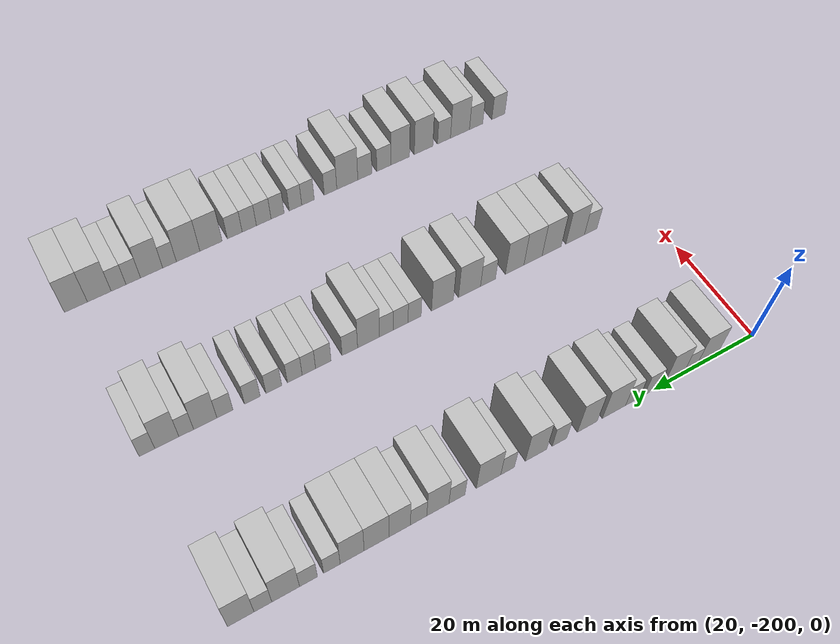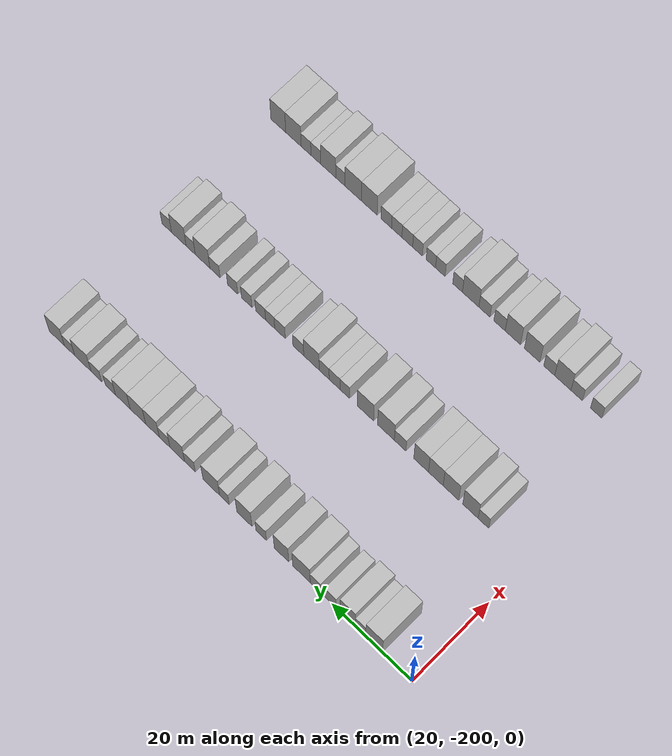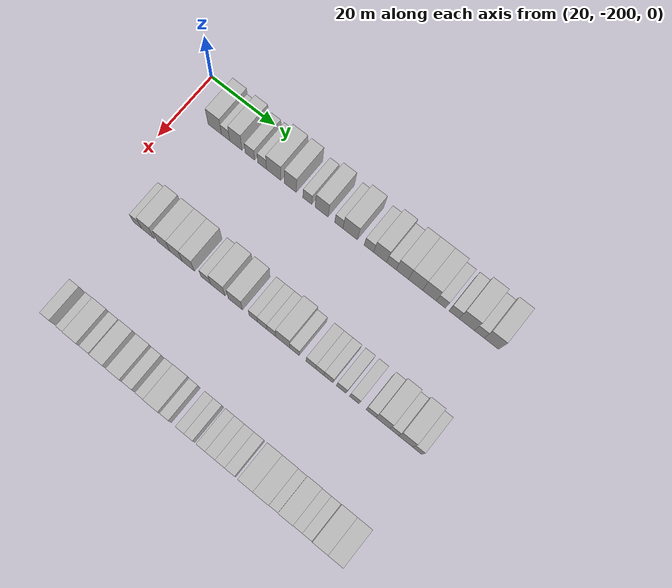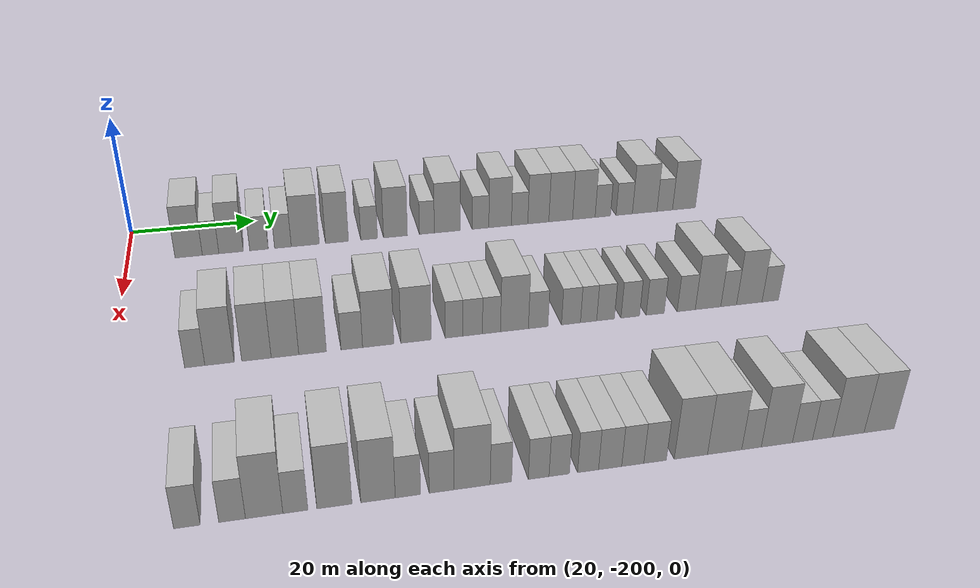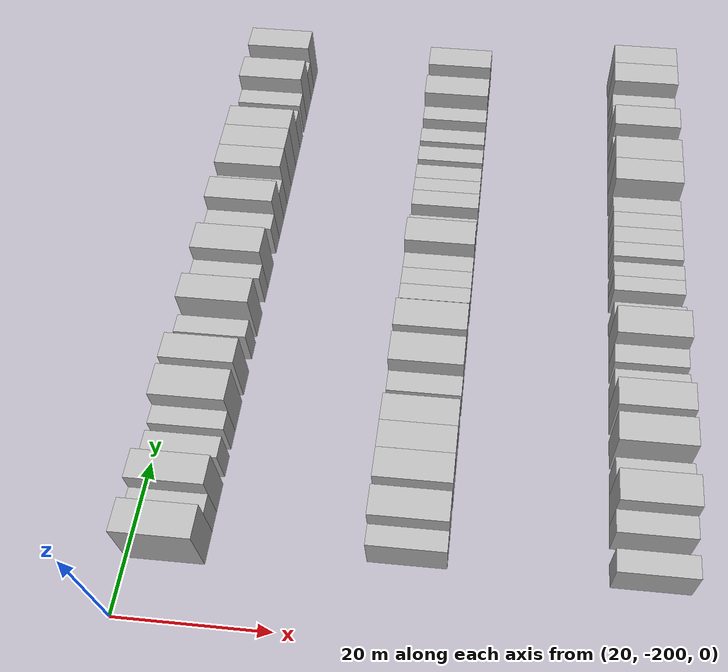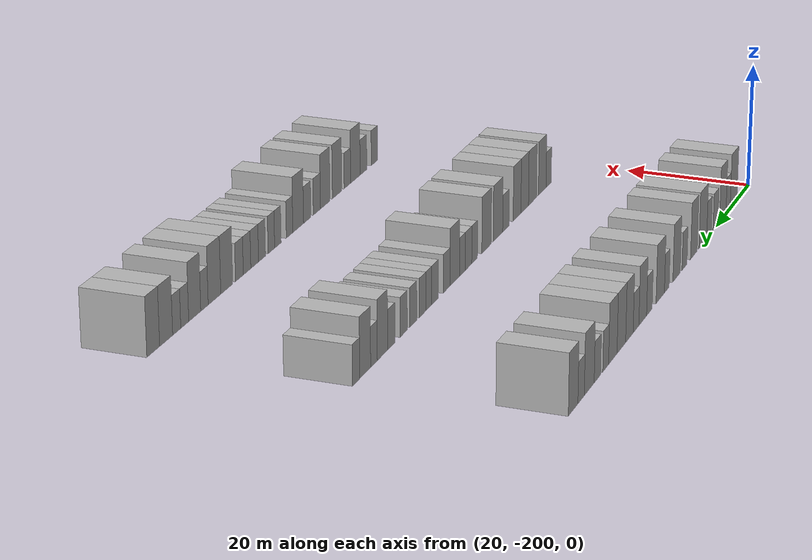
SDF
<sdf version="1.6">
 <world name="default">
  <model name="building_24">
   <static>1</static>
   <pose>25.0000 -190.5436 0 0.000000 0.000000 0.000000</pose>
   <link name="link">
    <pose>0 0 4.50 0 0 0</pose>
    <collision name="collision"><geometry><box><size>10.0000 4.2340 9.0000</size></box></geometry></collision>
    <visual name="visual">
     <cast_shadows>0</cast_shadows>
     <geometry><box><size>10.0000 4.2340 9.0000</size></box></geometry>
     <material>
      <script>
       <uri>model://HANNAS_wall/materials/scripts</uri>
       <uri>model://HANNAS_wall/materials/textures</uri>
       <name>vrc/HANNAS_wall</name>
      </script>
     </material>
    </visual>
   </link>
  </model>
  <model name="building_25">
   <static>1</static>
   <pose>25.0000 -187.1409 0 0.000000 0.000000 0.000000</pose>
   <link name="link">
    <pose>0 0 3.00 0 0 0</pose>
    <collision name="collision"><geometry><box><size>10.0000 2.5713 6.0000</size></box></geometry></collision>
    <visual name="visual">
     <cast_shadows>0</cast_shadows>
     <geometry><box><size>10.0000 2.5713 6.0000</size></box></geometry>
     <material>
      <script>
       <uri>model://HANNAS_wall/materials/scripts</uri>
       <uri>model://HANNAS_wall/materials/textures</uri>
       <name>vrc/HANNAS_wall</name>
      </script>
     </material>
    </visual>
   </link>
  </model>
  <model name="building_26">
   <static>1</static>
   <pose>25.0000 -183.9391 0 0.000000 0.000000 0.000000</pose>
   <link name="link">
    <pose>0 0 4.50 0 0 0</pose>
    <collision name="collision"><geometry><box><size>10.0000 3.8322 9.0000</size></box></geometry></collision>
    <visual name="visual">
     <cast_shadows>0</cast_shadows>
     <geometry><box><size>10.0000 3.8322 9.0000</size></box></geometry>
     <material>
      <script>
       <uri>model://HANNAS_wall/materials/scripts</uri>
       <uri>model://HANNAS_wall/materials/textures</uri>
       <name>vrc/HANNAS_wall</name>
      </script>
     </material>
    </visual>
   </link>
  </model>
  <model name="building_27">
   <static>1</static>
   <pose>25.0000 -179.5580 0 0.000000 0.000000 0.000000</pose>
   <link name="link">
    <pose>0 0 3.00 0 0 0</pose>
    <collision name="collision"><geometry><box><size>10.0000 2.9300 6.0000</size></box></geometry></collision>
    <visual name="visual">
     <cast_shadows>0</cast_shadows>
     <geometry><box><size>10.0000 2.9300 6.0000</size></box></geometry>
     <material>
      <script>
       <uri>model://HANNAS_wall/materials/scripts</uri>
       <uri>model://HANNAS_wall/materials/textures</uri>
       <name>vrc/HANNAS_wall</name>
      </script>
     </material>
    </visual>
   </link>
  </model>
  <model name="building_28">
   <static>1</static>
   <pose>25.0000 -175.7674 0 0.000000 0.000000 0.000000</pose>
   <link name="link">
    <pose>0 0 3.00 0 0 0</pose>
    <collision name="collision"><geometry><box><size>10.0000 2.6513 6.0000</size></box></geometry></collision>
    <visual name="visual">
     <cast_shadows>0</cast_shadows>
     <geometry><box><size>10.0000 2.6513 6.0000</size></box></geometry>
     <material>
      <script>
       <uri>model://HANNAS_wall/materials/scripts</uri>
       <uri>model://HANNAS_wall/materials/textures</uri>
       <name>vrc/HANNAS_wall</name>
      </script>
     </material>
    </visual>
   </link>
  </model>
  <model name="building_29">
   <static>1</static>
   <pose>25.0000 -172.1973 0 0.000000 0.000000 0.000000</pose>
   <link name="link">
    <pose>0 0 4.50 0 0 0</pose>
    <collision name="collision"><geometry><box><size>10.0000 4.4889 9.0000</size></box></geometry></collision>
    <visual name="visual">
     <cast_shadows>0</cast_shadows>
     <geometry><box><size>10.0000 4.4889 9.0000</size></box></geometry>
     <material>
      <script>
       <uri>model://HANNAS_wall/materials/scripts</uri>
       <uri>model://HANNAS_wall/materials/textures</uri>
       <name>vrc/HANNAS_wall</name>
      </script>
     </material>
    </visual>
   </link>
  </model>
  <model name="building_30">
   <static>1</static>
   <pose>25.0000 -167.0907 0 0.000000 0.000000 0.000000</pose>
   <link name="link">
    <pose>0 0 4.50 0 0 0</pose>
    <collision name="collision"><geometry><box><size>10.0000 3.7242 9.0000</size></box></geometry></collision>
    <visual name="visual">
     <cast_shadows>0</cast_shadows>
     <geometry><box><size>10.0000 3.7242 9.0000</size></box></geometry>
     <material>
      <script>
       <uri>model://HANNAS_wall/materials/scripts</uri>
       <uri>model://HANNAS_wall/materials/textures</uri>
       <name>vrc/HANNAS_wall</name>
      </script>
     </material>
    </visual>
   </link>
  </model>
  <model name="building_31">
   <static>1</static>
   <pose>25.0000 -161.8653 0 0.000000 0.000000 0.000000</pose>
   <link name="link">
    <pose>0 0 3.00 0 0 0</pose>
    <collision name="collision"><geometry><box><size>10.0000 2.7267 6.0000</size></box></geometry></collision>
    <visual name="visual">
     <cast_shadows>0</cast_shadows>
     <geometry><box><size>10.0000 2.7267 6.0000</size></box></geometry>
     <material>
      <script>
       <uri>model://HANNAS_wall/materials/scripts</uri>
       <uri>model://HANNAS_wall/materials/textures</uri>
       <name>vrc/HANNAS_wall</name>
      </script>
     </material>
    </visual>
   </link>
  </model>
  <model name="building_32">
   <static>1</static>
   <pose>25.0000 -157.5328 0 0.000000 0.000000 0.000000</pose>
   <link name="link">
    <pose>0 0 4.50 0 0 0</pose>
    <collision name="collision"><geometry><box><size>10.0000 3.9383 9.0000</size></box></geometry></collision>
    <visual name="visual">
     <cast_shadows>0</cast_shadows>
     <geometry><box><size>10.0000 3.9383 9.0000</size></box></geometry>
     <material>
      <script>
       <uri>model://HANNAS_wall/materials/scripts</uri>
       <uri>model://HANNAS_wall/materials/textures</uri>
       <name>vrc/HANNAS_wall</name>
      </script>
     </material>
    </visual>
   </link>
  </model>
  <model name="building_33">
   <static>1</static>
   <pose>25.0000 -152.3261 0 0.000000 0.000000 0.000000</pose>
   <link name="link">
    <pose>0 0 3.00 0 0 0</pose>
    <collision name="collision"><geometry><box><size>10.0000 2.4749 6.0000</size></box></geometry></collision>
    <visual name="visual">
     <cast_shadows>0</cast_shadows>
     <geometry><box><size>10.0000 2.4749 6.0000</size></box></geometry>
     <material>
      <script>
       <uri>model://HANNAS_wall/materials/scripts</uri>
       <uri>model://HANNAS_wall/materials/textures</uri>
       <name>vrc/HANNAS_wall</name>
      </script>
     </material>
    </visual>
   </link>
  </model>
  <model name="building_34">
   <static>1</static>
   <pose>25.0000 -148.9063 0 0.000000 0.000000 0.000000</pose>
   <link name="link">
    <pose>0 0 4.50 0 0 0</pose>
    <collision name="collision"><geometry><box><size>10.0000 4.3647 9.0000</size></box></geometry></collision>
    <visual name="visual">
     <cast_shadows>0</cast_shadows>
     <geometry><box><size>10.0000 4.3647 9.0000</size></box></geometry>
     <material>
      <script>
       <uri>model://HANNAS_wall/materials/scripts</uri>
       <uri>model://HANNAS_wall/materials/textures</uri>
       <name>vrc/HANNAS_wall</name>
      </script>
     </material>
    </visual>
   </link>
  </model>
  <model name="building_35">
   <static>1</static>
   <pose>25.0000 -143.3129 0 0.000000 0.000000 0.000000</pose>
   <link name="link">
    <pose>0 0 3.00 0 0 0</pose>
    <collision name="collision"><geometry><box><size>10.0000 2.8221 6.0000</size></box></geometry></collision>
    <visual name="visual">
     <cast_shadows>0</cast_shadows>
     <geometry><box><size>10.0000 2.8221 6.0000</size></box></geometry>
     <material>
      <script>
       <uri>model://HANNAS_wall/materials/scripts</uri>
       <uri>model://HANNAS_wall/materials/textures</uri>
       <name>vrc/HANNAS_wall</name>
      </script>
     </material>
    </visual>
   </link>
  </model>
  <model name="building_36">
   <static>1</static>
   <pose>25.0000 -139.9711 0 0.000000 0.000000 0.000000</pose>
   <link name="link">
    <pose>0 0 4.50 0 0 0</pose>
    <collision name="collision"><geometry><box><size>10.0000 3.8617 9.0000</size></box></geometry></collision>
    <visual name="visual">
     <cast_shadows>0</cast_shadows>
     <geometry><box><size>10.0000 3.8617 9.0000</size></box></geometry>
     <material>
      <script>
       <uri>model://HANNAS_wall/materials/scripts</uri>
       <uri>model://HANNAS_wall/materials/textures</uri>
       <name>vrc/HANNAS_wall</name>
      </script>
     </material>
    </visual>
   </link>
  </model>
  <model name="building_37">
   <static>1</static>
   <pose>25.0000 -136.6339 0 0.000000 0.000000 0.000000</pose>
   <link name="link">
    <pose>0 0 3.00 0 0 0</pose>
    <collision name="collision"><geometry><box><size>10.0000 2.8127 6.0000</size></box></geometry></collision>
    <visual name="visual">
     <cast_shadows>0</cast_shadows>
     <geometry><box><size>10.0000 2.8127 6.0000</size></box></geometry>
     <material>
      <script>
       <uri>model://HANNAS_wall/materials/scripts</uri>
       <uri>model://HANNAS_wall/materials/textures</uri>
       <name>vrc/HANNAS_wall</name>
      </script>
     </material>
    </visual>
   </link>
  </model>
  <model name="building_38">
   <static>1</static>
   <pose>25.0000 -133.4051 0 0.000000 0.000000 0.000000</pose>
   <link name="link">
    <pose>0 0 4.50 0 0 0</pose>
    <collision name="collision"><geometry><box><size>10.0000 3.6448 9.0000</size></box></geometry></collision>
    <visual name="visual">
     <cast_shadows>0</cast_shadows>
     <geometry><box><size>10.0000 3.6448 9.0000</size></box></geometry>
     <material>
      <script>
       <uri>model://HANNAS_wall/materials/scripts</uri>
       <uri>model://HANNAS_wall/materials/textures</uri>
       <name>vrc/HANNAS_wall</name>
      </script>
     </material>
    </visual>
   </link>
  </model>
  <model name="building_39">
   <static>1</static>
   <pose>25.0000 -129.5176 0 0.000000 0.000000 0.000000</pose>
   <link name="link">
    <pose>0 0 4.50 0 0 0</pose>
    <collision name="collision"><geometry><box><size>10.0000 4.1303 9.0000</size></box></geometry></collision>
    <visual name="visual">
     <cast_shadows>0</cast_shadows>
     <geometry><box><size>10.0000 4.1303 9.0000</size></box></geometry>
     <material>
      <script>
       <uri>model://HANNAS_wall/materials/scripts</uri>
       <uri>model://HANNAS_wall/materials/textures</uri>
       <name>vrc/HANNAS_wall</name>
      </script>
     </material>
    </visual>
   </link>
  </model>
  <model name="building_40">
   <static>1</static>
   <pose>25.0000 -125.4707 0 0.000000 0.000000 0.000000</pose>
   <link name="link">
    <pose>0 0 4.50 0 0 0</pose>
    <collision name="collision"><geometry><box><size>10.0000 3.9636 9.0000</size></box></geometry></collision>
    <visual name="visual">
     <cast_shadows>0</cast_shadows>
     <geometry><box><size>10.0000 3.9636 9.0000</size></box></geometry>
     <material>
      <script>
       <uri>model://HANNAS_wall/materials/scripts</uri>
       <uri>model://HANNAS_wall/materials/textures</uri>
       <name>vrc/HANNAS_wall</name>
      </script>
     </material>
    </visual>
   </link>
  </model>
  <model name="building_41">
   <static>1</static>
   <pose>25.0000 -122.1347 0 0.000000 0.000000 0.000000</pose>
   <link name="link">
    <pose>0 0 3.00 0 0 0</pose>
    <collision name="collision"><geometry><box><size>10.0000 2.7084 6.0000</size></box></geometry></collision>
    <visual name="visual">
     <cast_shadows>0</cast_shadows>
     <geometry><box><size>10.0000 2.7084 6.0000</size></box></geometry>
     <material>
      <script>
       <uri>model://HANNAS_wall/materials/scripts</uri>
       <uri>model://HANNAS_wall/materials/textures</uri>
       <name>vrc/HANNAS_wall</name>
      </script>
     </material>
    </visual>
   </link>
  </model>
  <model name="building_42">
   <static>1</static>
   <pose>25.0000 -118.3318 0 0.000000 0.000000 0.000000</pose>
   <link name="link">
    <pose>0 0 3.00 0 0 0</pose>
    <collision name="collision"><geometry><box><size>10.0000 2.8973 6.0000</size></box></geometry></collision>
    <visual name="visual">
     <cast_shadows>0</cast_shadows>
     <geometry><box><size>10.0000 2.8973 6.0000</size></box></geometry>
     <material>
      <script>
       <uri>model://HANNAS_wall/materials/scripts</uri>
       <uri>model://HANNAS_wall/materials/textures</uri>
       <name>vrc/HANNAS_wall</name>
      </script>
     </material>
    </visual>
   </link>
  </model>
  <model name="building_43">
   <static>1</static>
   <pose>25.0000 -114.6785 0 0.000000 0.000000 0.000000</pose>
   <link name="link">
    <pose>0 0 4.50 0 0 0</pose>
    <collision name="collision"><geometry><box><size>10.0000 4.4093 9.0000</size></box></geometry></collision>
    <visual name="visual">
     <cast_shadows>0</cast_shadows>
     <geometry><box><size>10.0000 4.4093 9.0000</size></box></geometry>
     <material>
      <script>
       <uri>model://HANNAS_wall/materials/scripts</uri>
       <uri>model://HANNAS_wall/materials/textures</uri>
       <name>vrc/HANNAS_wall</name>
      </script>
     </material>
    </visual>
   </link>
  </model>
  <model name="building_44">
   <static>1</static>
   <pose>25.0000 -111.0731 0 0.000000 0.000000 0.000000</pose>
   <link name="link">
    <pose>0 0 3.00 0 0 0</pose>
    <collision name="collision"><geometry><box><size>10.0000 2.8014 6.0000</size></box></geometry></collision>
    <visual name="visual">
     <cast_shadows>0</cast_shadows>
     <geometry><box><size>10.0000 2.8014 6.0000</size></box></geometry>
     <material>
      <script>
       <uri>model://HANNAS_wall/materials/scripts</uri>
       <uri>model://HANNAS_wall/materials/textures</uri>
       <name>vrc/HANNAS_wall</name>
      </script>
     </material>
    </visual>
   </link>
  </model>
  <model name="building_45">
   <static>1</static>
   <pose>25.0000 -107.6007 0 0.000000 0.000000 0.000000</pose>
   <link name="link">
    <pose>0 0 4.50 0 0 0</pose>
    <collision name="collision"><geometry><box><size>10.0000 4.1434 9.0000</size></box></geometry></collision>
    <visual name="visual">
     <cast_shadows>0</cast_shadows>
     <geometry><box><size>10.0000 4.1434 9.0000</size></box></geometry>
     <material>
      <script>
       <uri>model://HANNAS_wall/materials/scripts</uri>
       <uri>model://HANNAS_wall/materials/textures</uri>
       <name>vrc/HANNAS_wall</name>
      </script>
     </material>
    </visual>
   </link>
  </model>
  <model name="building_163">
   <static>1</static>
   <pose>55.0000 -189.0923 0 0.000000 0.000000 0.000000</pose>
   <link name="link">
    <pose>0 0 3.00 0 0 0</pose>
    <collision name="collision"><geometry><box><size>10.0000 2.6649 6.0000</size></box></geometry></collision>
    <visual name="visual">
     <cast_shadows>0</cast_shadows>
     <geometry><box><size>10.0000 2.6649 6.0000</size></box></geometry>
     <material>
      <script>
       <uri>model://HANNAS_wall/materials/scripts</uri>
       <uri>model://HANNAS_wall/materials/textures</uri>
       <name>vrc/HANNAS_wall</name>
      </script>
     </material>
    </visual>
   </link>
  </model>
  <model name="building_164">
   <static>1</static>
   <pose>55.0000 -185.8208 0 0.000000 0.000000 0.000000</pose>
   <link name="link">
    <pose>0 0 4.50 0 0 0</pose>
    <collision name="collision"><geometry><box><size>10.0000 3.8782 9.0000</size></box></geometry></collision>
    <visual name="visual">
     <cast_shadows>0</cast_shadows>
     <geometry><box><size>10.0000 3.8782 9.0000</size></box></geometry>
     <material>
      <script>
       <uri>model://HANNAS_wall/materials/scripts</uri>
       <uri>model://HANNAS_wall/materials/textures</uri>
       <name>vrc/HANNAS_wall</name>
      </script>
     </material>
    </visual>
   </link>
  </model>
  <model name="building_165">
   <static>1</static>
   <pose>55.0000 -180.9092 0 0.000000 0.000000 0.000000</pose>
   <link name="link">
    <pose>0 0 4.50 0 0 0</pose>
    <collision name="collision"><geometry><box><size>10.0000 3.9450 9.0000</size></box></geometry></collision>
    <visual name="visual">
     <cast_shadows>0</cast_shadows>
     <geometry><box><size>10.0000 3.9450 9.0000</size></box></geometry>
     <material>
      <script>
       <uri>model://HANNAS_wall/materials/scripts</uri>
       <uri>model://HANNAS_wall/materials/textures</uri>
       <name>vrc/HANNAS_wall</name>
      </script>
     </material>
    </visual>
   </link>
  </model>
  <model name="building_166">
   <static>1</static>
   <pose>55.0000 -177.0762 0 0.000000 0.000000 0.000000</pose>
   <link name="link">
    <pose>0 0 4.50 0 0 0</pose>
    <collision name="collision"><geometry><box><size>10.0000 3.7209 9.0000</size></box></geometry></collision>
    <visual name="visual">
     <cast_shadows>0</cast_shadows>
     <geometry><box><size>10.0000 3.7209 9.0000</size></box></geometry>
     <material>
      <script>
       <uri>model://HANNAS_wall/materials/scripts</uri>
       <uri>model://HANNAS_wall/materials/textures</uri>
       <name>vrc/HANNAS_wall</name>
      </script>
     </material>
    </visual>
   </link>
  </model>
  <model name="building_167">
   <static>1</static>
   <pose>55.0000 -173.3343 0 0.000000 0.000000 0.000000</pose>
   <link name="link">
    <pose>0 0 4.50 0 0 0</pose>
    <collision name="collision"><geometry><box><size>10.0000 3.7628 9.0000</size></box></geometry></collision>
    <visual name="visual">
     <cast_shadows>0</cast_shadows>
     <geometry><box><size>10.0000 3.7628 9.0000</size></box></geometry>
     <material>
      <script>
       <uri>model://HANNAS_wall/materials/scripts</uri>
       <uri>model://HANNAS_wall/materials/textures</uri>
       <name>vrc/HANNAS_wall</name>
      </script>
     </material>
    </visual>
   </link>
  </model>
  <model name="building_168">
   <static>1</static>
   <pose>55.0000 -167.9664 0 0.000000 0.000000 0.000000</pose>
   <link name="link">
    <pose>0 0 3.00 0 0 0</pose>
    <collision name="collision"><geometry><box><size>10.0000 2.9730 6.0000</size></box></geometry></collision>
    <visual name="visual">
     <cast_shadows>0</cast_shadows>
     <geometry><box><size>10.0000 2.9730 6.0000</size></box></geometry>
     <material>
      <script>
       <uri>model://HANNAS_wall/materials/scripts</uri>
       <uri>model://HANNAS_wall/materials/textures</uri>
       <name>vrc/HANNAS_wall</name>
      </script>
     </material>
    </visual>
   </link>
  </model>
  <model name="building_169">
   <static>1</static>
   <pose>55.0000 -164.3091 0 0.000000 0.000000 0.000000</pose>
   <link name="link">
    <pose>0 0 4.50 0 0 0</pose>
    <collision name="collision"><geometry><box><size>10.0000 4.3416 9.0000</size></box></geometry></collision>
    <visual name="visual">
     <cast_shadows>0</cast_shadows>
     <geometry><box><size>10.0000 4.3416 9.0000</size></box></geometry>
     <material>
      <script>
       <uri>model://HANNAS_wall/materials/scripts</uri>
       <uri>model://HANNAS_wall/materials/textures</uri>
       <name>vrc/HANNAS_wall</name>
      </script>
     </material>
    </visual>
   </link>
  </model>
  <model name="building_170">
   <static>1</static>
   <pose>55.0000 -159.0096 0 0.000000 0.000000 0.000000</pose>
   <link name="link">
    <pose>0 0 4.50 0 0 0</pose>
    <collision name="collision"><geometry><box><size>10.0000 4.2576 9.0000</size></box></geometry></collision>
    <visual name="visual">
     <cast_shadows>0</cast_shadows>
     <geometry><box><size>10.0000 4.2576 9.0000</size></box></geometry>
     <material>
      <script>
       <uri>model://HANNAS_wall/materials/scripts</uri>
       <uri>model://HANNAS_wall/materials/textures</uri>
       <name>vrc/HANNAS_wall</name>
      </script>
     </material>
    </visual>
   </link>
  </model>
  <model name="building_171">
   <static>1</static>
   <pose>55.0000 -153.6266 0 0.000000 0.000000 0.000000</pose>
   <link name="link">
    <pose>0 0 3.00 0 0 0</pose>
    <collision name="collision"><geometry><box><size>10.0000 2.5083 6.0000</size></box></geometry></collision>
    <visual name="visual">
     <cast_shadows>0</cast_shadows>
     <geometry><box><size>10.0000 2.5083 6.0000</size></box></geometry>
     <material>
      <script>
       <uri>model://HANNAS_wall/materials/scripts</uri>
       <uri>model://HANNAS_wall/materials/textures</uri>
       <name>vrc/HANNAS_wall</name>
      </script>
     </material>
    </visual>
   </link>
  </model>
  <model name="building_172">
   <static>1</static>
   <pose>55.0000 -150.9759 0 0.000000 0.000000 0.000000</pose>
   <link name="link">
    <pose>0 0 3.00 0 0 0</pose>
    <collision name="collision"><geometry><box><size>10.0000 2.7932 6.0000</size></box></geometry></collision>
    <visual name="visual">
     <cast_shadows>0</cast_shadows>
     <geometry><box><size>10.0000 2.7932 6.0000</size></box></geometry>
     <material>
      <script>
       <uri>model://HANNAS_wall/materials/scripts</uri>
       <uri>model://HANNAS_wall/materials/textures</uri>
       <name>vrc/HANNAS_wall</name>
      </script>
     </material>
    </visual>
   </link>
  </model>
  <model name="building_173">
   <static>1</static>
   <pose>55.0000 -148.2786 0 0.000000 0.000000 0.000000</pose>
   <link name="link">
    <pose>0 0 3.00 0 0 0</pose>
    <collision name="collision"><geometry><box><size>10.0000 2.6013 6.0000</size></box></geometry></collision>
    <visual name="visual">
     <cast_shadows>0</cast_shadows>
     <geometry><box><size>10.0000 2.6013 6.0000</size></box></geometry>
     <material>
      <script>
       <uri>model://HANNAS_wall/materials/scripts</uri>
       <uri>model://HANNAS_wall/materials/textures</uri>
       <name>vrc/HANNAS_wall</name>
      </script>
     </material>
    </visual>
   </link>
  </model>
  <model name="building_174">
   <static>1</static>
   <pose>55.0000 -144.9453 0 0.000000 0.000000 0.000000</pose>
   <link name="link">
    <pose>0 0 4.50 0 0 0</pose>
    <collision name="collision"><geometry><box><size>10.0000 4.0654 9.0000</size></box></geometry></collision>
    <visual name="visual">
     <cast_shadows>0</cast_shadows>
     <geometry><box><size>10.0000 4.0654 9.0000</size></box></geometry>
     <material>
      <script>
       <uri>model://HANNAS_wall/materials/scripts</uri>
       <uri>model://HANNAS_wall/materials/textures</uri>
       <name>vrc/HANNAS_wall</name>
      </script>
     </material>
    </visual>
   </link>
  </model>
  <model name="building_175">
   <static>1</static>
   <pose>55.0000 -141.4797 0 0.000000 0.000000 0.000000</pose>
   <link name="link">
    <pose>0 0 3.00 0 0 0</pose>
    <collision name="collision"><geometry><box><size>10.0000 2.8658 6.0000</size></box></geometry></collision>
    <visual name="visual">
     <cast_shadows>0</cast_shadows>
     <geometry><box><size>10.0000 2.8658 6.0000</size></box></geometry>
     <material>
      <script>
       <uri>model://HANNAS_wall/materials/scripts</uri>
       <uri>model://HANNAS_wall/materials/textures</uri>
       <name>vrc/HANNAS_wall</name>
      </script>
     </material>
    </visual>
   </link>
  </model>
  <model name="building_176">
   <static>1</static>
   <pose>55.0000 -136.6403 0 0.000000 0.000000 0.000000</pose>
   <link name="link">
    <pose>0 0 3.00 0 0 0</pose>
    <collision name="collision"><geometry><box><size>10.0000 2.8130 6.0000</size></box></geometry></collision>
    <visual name="visual">
     <cast_shadows>0</cast_shadows>
     <geometry><box><size>10.0000 2.8130 6.0000</size></box></geometry>
     <material>
      <script>
       <uri>model://HANNAS_wall/materials/scripts</uri>
       <uri>model://HANNAS_wall/materials/textures</uri>
       <name>vrc/HANNAS_wall</name>
      </script>
     </material>
    </visual>
   </link>
  </model>
  <model name="building_177">
   <static>1</static>
   <pose>55.0000 -134.0268 0 0.000000 0.000000 0.000000</pose>
   <link name="link">
    <pose>0 0 3.00 0 0 0</pose>
    <collision name="collision"><geometry><box><size>10.0000 2.4140 6.0000</size></box></geometry></collision>
    <visual name="visual">
     <cast_shadows>0</cast_shadows>
     <geometry><box><size>10.0000 2.4140 6.0000</size></box></geometry>
     <material>
      <script>
       <uri>model://HANNAS_wall/materials/scripts</uri>
       <uri>model://HANNAS_wall/materials/textures</uri>
       <name>vrc/HANNAS_wall</name>
      </script>
     </material>
    </visual>
   </link>
  </model>
  <model name="building_178">
   <static>1</static>
   <pose>55.0000 -131.4965 0 0.000000 0.000000 0.000000</pose>
   <link name="link">
    <pose>0 0 3.00 0 0 0</pose>
    <collision name="collision"><geometry><box><size>10.0000 2.6467 6.0000</size></box></geometry></collision>
    <visual name="visual">
     <cast_shadows>0</cast_shadows>
     <geometry><box><size>10.0000 2.6467 6.0000</size></box></geometry>
     <material>
      <script>
       <uri>model://HANNAS_wall/materials/scripts</uri>
       <uri>model://HANNAS_wall/materials/textures</uri>
       <name>vrc/HANNAS_wall</name>
      </script>
     </material>
    </visual>
   </link>
  </model>
  <model name="building_179">
   <static>1</static>
   <pose>55.0000 -127.7722 0 0.000000 0.000000 0.000000</pose>
   <link name="link">
    <pose>0 0 3.00 0 0 0</pose>
    <collision name="collision"><geometry><box><size>10.0000 2.8018 6.0000</size></box></geometry></collision>
    <visual name="visual">
     <cast_shadows>0</cast_shadows>
     <geometry><box><size>10.0000 2.8018 6.0000</size></box></geometry>
     <material>
      <script>
       <uri>model://HANNAS_wall/materials/scripts</uri>
       <uri>model://HANNAS_wall/materials/textures</uri>
       <name>vrc/HANNAS_wall</name>
      </script>
     </material>
    </visual>
   </link>
  </model>
  <model name="building_180">
   <static>1</static>
   <pose>55.0000 -123.9971 0 0.000000 0.000000 0.000000</pose>
   <link name="link">
    <pose>0 0 3.00 0 0 0</pose>
    <collision name="collision"><geometry><box><size>10.0000 2.7485 6.0000</size></box></geometry></collision>
    <visual name="visual">
     <cast_shadows>0</cast_shadows>
     <geometry><box><size>10.0000 2.7485 6.0000</size></box></geometry>
     <material>
      <script>
       <uri>model://HANNAS_wall/materials/scripts</uri>
       <uri>model://HANNAS_wall/materials/textures</uri>
       <name>vrc/HANNAS_wall</name>
      </script>
     </material>
    </visual>
   </link>
  </model>
  <model name="building_181">
   <static>1</static>
   <pose>55.0000 -119.2290 0 0.000000 0.000000 0.000000</pose>
   <link name="link">
    <pose>0 0 3.00 0 0 0</pose>
    <collision name="collision"><geometry><box><size>10.0000 2.7877 6.0000</size></box></geometry></collision>
    <visual name="visual">
     <cast_shadows>0</cast_shadows>
     <geometry><box><size>10.0000 2.7877 6.0000</size></box></geometry>
     <material>
      <script>
       <uri>model://HANNAS_wall/materials/scripts</uri>
       <uri>model://HANNAS_wall/materials/textures</uri>
       <name>vrc/HANNAS_wall</name>
      </script>
     </material>
    </visual>
   </link>
  </model>
  <model name="building_182">
   <static>1</static>
   <pose>55.0000 -115.8578 0 0.000000 0.000000 0.000000</pose>
   <link name="link">
    <pose>0 0 4.50 0 0 0</pose>
    <collision name="collision"><geometry><box><size>10.0000 3.9546 9.0000</size></box></geometry></collision>
    <visual name="visual">
     <cast_shadows>0</cast_shadows>
     <geometry><box><size>10.0000 3.9546 9.0000</size></box></geometry>
     <material>
      <script>
       <uri>model://HANNAS_wall/materials/scripts</uri>
       <uri>model://HANNAS_wall/materials/textures</uri>
       <name>vrc/HANNAS_wall</name>
      </script>
     </material>
    </visual>
   </link>
  </model>
  <model name="building_183">
   <static>1</static>
   <pose>55.0000 -112.6442 0 0.000000 0.000000 0.000000</pose>
   <link name="link">
    <pose>0 0 3.00 0 0 0</pose>
    <collision name="collision"><geometry><box><size>10.0000 2.4728 6.0000</size></box></geometry></collision>
    <visual name="visual">
     <cast_shadows>0</cast_shadows>
     <geometry><box><size>10.0000 2.4728 6.0000</size></box></geometry>
     <material>
      <script>
       <uri>model://HANNAS_wall/materials/scripts</uri>
       <uri>model://HANNAS_wall/materials/textures</uri>
       <name>vrc/HANNAS_wall</name>
      </script>
     </material>
    </visual>
   </link>
  </model>
  <model name="building_184">
   <static>1</static>
   <pose>55.0000 -109.4047 0 0.000000 0.000000 0.000000</pose>
   <link name="link">
    <pose>0 0 4.50 0 0 0</pose>
    <collision name="collision"><geometry><box><size>10.0000 4.0061 9.0000</size></box></geometry></collision>
    <visual name="visual">
     <cast_shadows>0</cast_shadows>
     <geometry><box><size>10.0000 4.0061 9.0000</size></box></geometry>
     <material>
      <script>
       <uri>model://HANNAS_wall/materials/scripts</uri>
       <uri>model://HANNAS_wall/materials/textures</uri>
       <name>vrc/HANNAS_wall</name>
      </script>
     </material>
    </visual>
   </link>
  </model>
  <model name="building_185">
   <static>1</static>
   <pose>55.0000 -106.0993 0 0.000000 0.000000 0.000000</pose>
   <link name="link">
    <pose>0 0 3.00 0 0 0</pose>
    <collision name="collision"><geometry><box><size>10.0000 2.6047 6.0000</size></box></geometry></collision>
    <visual name="visual">
     <cast_shadows>0</cast_shadows>
     <geometry><box><size>10.0000 2.6047 6.0000</size></box></geometry>
     <material>
      <script>
       <uri>model://HANNAS_wall/materials/scripts</uri>
       <uri>model://HANNAS_wall/materials/textures</uri>
       <name>vrc/HANNAS_wall</name>
      </script>
     </material>
    </visual>
   </link>
  </model>
  <model name="building_292">
   <static>1</static>
   <pose>85.0000 -189.4106 0 0.000000 0.000000 0.000000</pose>
   <link name="link">
    <pose>0 0 3.00 0 0 0</pose>
    <collision name="collision"><geometry><box><size>10.0000 2.8659 6.0000</size></box></geometry></collision>
    <visual name="visual">
     <cast_shadows>0</cast_shadows>
     <geometry><box><size>10.0000 2.8659 6.0000</size></box></geometry>
     <material>
      <script>
       <uri>model://HANNAS_wall/materials/scripts</uri>
       <uri>model://HANNAS_wall/materials/textures</uri>
       <name>vrc/HANNAS_wall</name>
      </script>
     </material>
    </visual>
   </link>
  </model>
  <model name="building_293">
   <static>1</static>
   <pose>85.0000 -184.5219 0 0.000000 0.000000 0.000000</pose>
   <link name="link">
    <pose>0 0 3.00 0 0 0</pose>
    <collision name="collision"><geometry><box><size>10.0000 2.9114 6.0000</size></box></geometry></collision>
    <visual name="visual">
     <cast_shadows>0</cast_shadows>
     <geometry><box><size>10.0000 2.9114 6.0000</size></box></geometry>
     <material>
      <script>
       <uri>model://HANNAS_wall/materials/scripts</uri>
       <uri>model://HANNAS_wall/materials/textures</uri>
       <name>vrc/HANNAS_wall</name>
      </script>
     </material>
    </visual>
   </link>
  </model>
  <model name="building_294">
   <static>1</static>
   <pose>85.0000 -181.0087 0 0.000000 0.000000 0.000000</pose>
   <link name="link">
    <pose>0 0 4.50 0 0 0</pose>
    <collision name="collision"><geometry><box><size>10.0000 4.1152 9.0000</size></box></geometry></collision>
    <visual name="visual">
     <cast_shadows>0</cast_shadows>
     <geometry><box><size>10.0000 4.1152 9.0000</size></box></geometry>
     <material>
      <script>
       <uri>model://HANNAS_wall/materials/scripts</uri>
       <uri>model://HANNAS_wall/materials/textures</uri>
       <name>vrc/HANNAS_wall</name>
      </script>
     </material>
    </visual>
   </link>
  </model>
  <model name="building_295">
   <static>1</static>
   <pose>85.0000 -177.5628 0 0.000000 0.000000 0.000000</pose>
   <link name="link">
    <pose>0 0 3.00 0 0 0</pose>
    <collision name="collision"><geometry><box><size>10.0000 2.7765 6.0000</size></box></geometry></collision>
    <visual name="visual">
     <cast_shadows>0</cast_shadows>
     <geometry><box><size>10.0000 2.7765 6.0000</size></box></geometry>
     <material>
      <script>
       <uri>model://HANNAS_wall/materials/scripts</uri>
       <uri>model://HANNAS_wall/materials/textures</uri>
       <name>vrc/HANNAS_wall</name>
      </script>
     </material>
    </visual>
   </link>
  </model>
  <model name="building_296">
   <static>1</static>
   <pose>85.0000 -173.2002 0 0.000000 0.000000 0.000000</pose>
   <link name="link">
    <pose>0 0 4.50 0 0 0</pose>
    <collision name="collision"><geometry><box><size>10.0000 3.9487 9.0000</size></box></geometry></collision>
    <visual name="visual">
     <cast_shadows>0</cast_shadows>
     <geometry><box><size>10.0000 3.9487 9.0000</size></box></geometry>
     <material>
      <script>
       <uri>model://HANNAS_wall/materials/scripts</uri>
       <uri>model://HANNAS_wall/materials/textures</uri>
       <name>vrc/HANNAS_wall</name>
      </script>
     </material>
    </visual>
   </link>
  </model>
  <model name="building_297">
   <static>1</static>
   <pose>85.0000 -168.2648 0 0.000000 0.000000 0.000000</pose>
   <link name="link">
    <pose>0 0 4.50 0 0 0</pose>
    <collision name="collision"><geometry><box><size>10.0000 3.9220 9.0000</size></box></geometry></collision>
    <visual name="visual">
     <cast_shadows>0</cast_shadows>
     <geometry><box><size>10.0000 3.9220 9.0000</size></box></geometry>
     <material>
      <script>
       <uri>model://HANNAS_wall/materials/scripts</uri>
       <uri>model://HANNAS_wall/materials/textures</uri>
       <name>vrc/HANNAS_wall</name>
      </script>
     </material>
    </visual>
   </link>
  </model>
  <model name="building_298">
   <static>1</static>
   <pose>85.0000 -164.8456 0 0.000000 0.000000 0.000000</pose>
   <link name="link">
    <pose>0 0 3.00 0 0 0</pose>
    <collision name="collision"><geometry><box><size>10.0000 2.9165 6.0000</size></box></geometry></collision>
    <visual name="visual">
     <cast_shadows>0</cast_shadows>
     <geometry><box><size>10.0000 2.9165 6.0000</size></box></geometry>
     <material>
      <script>
       <uri>model://HANNAS_wall/materials/scripts</uri>
       <uri>model://HANNAS_wall/materials/textures</uri>
       <name>vrc/HANNAS_wall</name>
      </script>
     </material>
    </visual>
   </link>
  </model>
  <model name="building_299">
   <static>1</static>
   <pose>85.0000 -160.9450 0 0.000000 0.000000 0.000000</pose>
   <link name="link">
    <pose>0 0 3.00 0 0 0</pose>
    <collision name="collision"><geometry><box><size>10.0000 2.8847 6.0000</size></box></geometry></collision>
    <visual name="visual">
     <cast_shadows>0</cast_shadows>
     <geometry><box><size>10.0000 2.8847 6.0000</size></box></geometry>
     <material>
      <script>
       <uri>model://HANNAS_wall/materials/scripts</uri>
       <uri>model://HANNAS_wall/materials/textures</uri>
       <name>vrc/HANNAS_wall</name>
      </script>
     </material>
    </visual>
   </link>
  </model>
  <model name="building_300">
   <static>1</static>
   <pose>85.0000 -157.3743 0 0.000000 0.000000 0.000000</pose>
   <link name="link">
    <pose>0 0 4.50 0 0 0</pose>
    <collision name="collision"><geometry><box><size>10.0000 4.2568 9.0000</size></box></geometry></collision>
    <visual name="visual">
     <cast_shadows>0</cast_shadows>
     <geometry><box><size>10.0000 4.2568 9.0000</size></box></geometry>
     <material>
      <script>
       <uri>model://HANNAS_wall/materials/scripts</uri>
       <uri>model://HANNAS_wall/materials/textures</uri>
       <name>vrc/HANNAS_wall</name>
      </script>
     </material>
    </visual>
   </link>
  </model>
  <model name="building_301">
   <static>1</static>
   <pose>85.0000 -153.9768 0 0.000000 0.000000 0.000000</pose>
   <link name="link">
    <pose>0 0 3.00 0 0 0</pose>
    <collision name="collision"><geometry><box><size>10.0000 2.5382 6.0000</size></box></geometry></collision>
    <visual name="visual">
     <cast_shadows>0</cast_shadows>
     <geometry><box><size>10.0000 2.5382 6.0000</size></box></geometry>
     <material>
      <script>
       <uri>model://HANNAS_wall/materials/scripts</uri>
       <uri>model://HANNAS_wall/materials/textures</uri>
       <name>vrc/HANNAS_wall</name>
      </script>
     </material>
    </visual>
   </link>
  </model>
  <model name="building_302">
   <static>1</static>
   <pose>85.0000 -149.4634 0 0.000000 0.000000 0.000000</pose>
   <link name="link">
    <pose>0 0 3.00 0 0 0</pose>
    <collision name="collision"><geometry><box><size>10.0000 2.4886 6.0000</size></box></geometry></collision>
    <visual name="visual">
     <cast_shadows>0</cast_shadows>
     <geometry><box><size>10.0000 2.4886 6.0000</size></box></geometry>
     <material>
      <script>
       <uri>model://HANNAS_wall/materials/scripts</uri>
       <uri>model://HANNAS_wall/materials/textures</uri>
       <name>vrc/HANNAS_wall</name>
      </script>
     </material>
    </visual>
   </link>
  </model>
  <model name="building_303">
   <static>1</static>
   <pose>85.0000 -146.9889 0 0.000000 0.000000 0.000000</pose>
   <link name="link">
    <pose>0 0 3.00 0 0 0</pose>
    <collision name="collision"><geometry><box><size>10.0000 2.4603 6.0000</size></box></geometry></collision>
    <visual name="visual">
     <cast_shadows>0</cast_shadows>
     <geometry><box><size>10.0000 2.4603 6.0000</size></box></geometry>
     <material>
      <script>
       <uri>model://HANNAS_wall/materials/scripts</uri>
       <uri>model://HANNAS_wall/materials/textures</uri>
       <name>vrc/HANNAS_wall</name>
      </script>
     </material>
    </visual>
   </link>
  </model>
  <model name="building_304">
   <static>1</static>
   <pose>85.0000 -143.4765 0 0.000000 0.000000 0.000000</pose>
   <link name="link">
    <pose>0 0 3.00 0 0 0</pose>
    <collision name="collision"><geometry><box><size>10.0000 2.5646 6.0000</size></box></geometry></collision>
    <visual name="visual">
     <cast_shadows>0</cast_shadows>
     <geometry><box><size>10.0000 2.5646 6.0000</size></box></geometry>
     <material>
      <script>
       <uri>model://HANNAS_wall/materials/scripts</uri>
       <uri>model://HANNAS_wall/materials/textures</uri>
       <name>vrc/HANNAS_wall</name>
      </script>
     </material>
    </visual>
   </link>
  </model>
  <model name="building_305">
   <static>1</static>
   <pose>85.0000 -140.7713 0 0.000000 0.000000 0.000000</pose>
   <link name="link">
    <pose>0 0 3.00 0 0 0</pose>
    <collision name="collision"><geometry><box><size>10.0000 2.8459 6.0000</size></box></geometry></collision>
    <visual name="visual">
     <cast_shadows>0</cast_shadows>
     <geometry><box><size>10.0000 2.8459 6.0000</size></box></geometry>
     <material>
      <script>
       <uri>model://HANNAS_wall/materials/scripts</uri>
       <uri>model://HANNAS_wall/materials/textures</uri>
       <name>vrc/HANNAS_wall</name>
      </script>
     </material>
    </visual>
   </link>
  </model>
  <model name="building_306">
   <static>1</static>
   <pose>85.0000 -137.9798 0 0.000000 0.000000 0.000000</pose>
   <link name="link">
    <pose>0 0 3.00 0 0 0</pose>
    <collision name="collision"><geometry><box><size>10.0000 2.7371 6.0000</size></box></geometry></collision>
    <visual name="visual">
     <cast_shadows>0</cast_shadows>
     <geometry><box><size>10.0000 2.7371 6.0000</size></box></geometry>
     <material>
      <script>
       <uri>model://HANNAS_wall/materials/scripts</uri>
       <uri>model://HANNAS_wall/materials/textures</uri>
       <name>vrc/HANNAS_wall</name>
      </script>
     </material>
    </visual>
   </link>
  </model>
  <model name="building_307">
   <static>1</static>
   <pose>85.0000 -135.1992 0 0.000000 0.000000 0.000000</pose>
   <link name="link">
    <pose>0 0 3.00 0 0 0</pose>
    <collision name="collision"><geometry><box><size>10.0000 2.8241 6.0000</size></box></geometry></collision>
    <visual name="visual">
     <cast_shadows>0</cast_shadows>
     <geometry><box><size>10.0000 2.8241 6.0000</size></box></geometry>
     <material>
      <script>
       <uri>model://HANNAS_wall/materials/scripts</uri>
       <uri>model://HANNAS_wall/materials/textures</uri>
       <name>vrc/HANNAS_wall</name>
      </script>
     </material>
    </visual>
   </link>
  </model>
  <model name="building_308">
   <static>1</static>
   <pose>85.0000 -130.6897 0 0.000000 0.000000 0.000000</pose>
   <link name="link">
    <pose>0 0 4.50 0 0 0</pose>
    <collision name="collision"><geometry><box><size>10.0000 4.1950 9.0000</size></box></geometry></collision>
    <visual name="visual">
     <cast_shadows>0</cast_shadows>
     <geometry><box><size>10.0000 4.1950 9.0000</size></box></geometry>
     <material>
      <script>
       <uri>model://HANNAS_wall/materials/scripts</uri>
       <uri>model://HANNAS_wall/materials/textures</uri>
       <name>vrc/HANNAS_wall</name>
      </script>
     </material>
    </visual>
   </link>
  </model>
  <model name="building_309">
   <static>1</static>
   <pose>85.0000 -126.4015 0 0.000000 0.000000 0.000000</pose>
   <link name="link">
    <pose>0 0 4.50 0 0 0</pose>
    <collision name="collision"><geometry><box><size>10.0000 4.3814 9.0000</size></box></geometry></collision>
    <visual name="visual">
     <cast_shadows>0</cast_shadows>
     <geometry><box><size>10.0000 4.3814 9.0000</size></box></geometry>
     <material>
      <script>
       <uri>model://HANNAS_wall/materials/scripts</uri>
       <uri>model://HANNAS_wall/materials/textures</uri>
       <name>vrc/HANNAS_wall</name>
      </script>
     </material>
    </visual>
   </link>
  </model>
  <model name="building_310">
   <static>1</static>
   <pose>85.0000 -122.9492 0 0.000000 0.000000 0.000000</pose>
   <link name="link">
    <pose>0 0 3.00 0 0 0</pose>
    <collision name="collision"><geometry><box><size>10.0000 2.5232 6.0000</size></box></geometry></collision>
    <visual name="visual">
     <cast_shadows>0</cast_shadows>
     <geometry><box><size>10.0000 2.5232 6.0000</size></box></geometry>
     <material>
      <script>
       <uri>model://HANNAS_wall/materials/scripts</uri>
       <uri>model://HANNAS_wall/materials/textures</uri>
       <name>vrc/HANNAS_wall</name>
      </script>
     </material>
    </visual>
   </link>
  </model>
  <model name="building_311">
   <static>1</static>
   <pose>85.0000 -119.6577 0 0.000000 0.000000 0.000000</pose>
   <link name="link">
    <pose>0 0 4.50 0 0 0</pose>
    <collision name="collision"><geometry><box><size>10.0000 4.0599 9.0000</size></box></geometry></collision>
    <visual name="visual">
     <cast_shadows>0</cast_shadows>
     <geometry><box><size>10.0000 4.0599 9.0000</size></box></geometry>
     <material>
      <script>
       <uri>model://HANNAS_wall/materials/scripts</uri>
       <uri>model://HANNAS_wall/materials/textures</uri>
       <name>vrc/HANNAS_wall</name>
      </script>
     </material>
    </visual>
   </link>
  </model>
  <model name="building_312">
   <static>1</static>
   <pose>85.0000 -116.3078 0 0.000000 0.000000 0.000000</pose>
   <link name="link">
    <pose>0 0 3.00 0 0 0</pose>
    <collision name="collision"><geometry><box><size>10.0000 2.6399 6.0000</size></box></geometry></collision>
    <visual name="visual">
     <cast_shadows>0</cast_shadows>
     <geometry><box><size>10.0000 2.6399 6.0000</size></box></geometry>
     <material>
      <script>
       <uri>model://HANNAS_wall/materials/scripts</uri>
       <uri>model://HANNAS_wall/materials/textures</uri>
       <name>vrc/HANNAS_wall</name>
      </script>
     </material>
    </visual>
   </link>
  </model>
  <model name="building_313">
   <static>1</static>
   <pose>85.0000 -113.6633 0 0.000000 0.000000 0.000000</pose>
   <link name="link">
    <pose>0 0 3.00 0 0 0</pose>
    <collision name="collision"><geometry><box><size>10.0000 2.6490 6.0000</size></box></geometry></collision>
    <visual name="visual">
     <cast_shadows>0</cast_shadows>
     <geometry><box><size>10.0000 2.6490 6.0000</size></box></geometry>
     <material>
      <script>
       <uri>model://HANNAS_wall/materials/scripts</uri>
       <uri>model://HANNAS_wall/materials/textures</uri>
       <name>vrc/HANNAS_wall</name>
      </script>
     </material>
    </visual>
   </link>
  </model>
  <model name="building_314">
   <static>1</static>
   <pose>85.0000 -110.2308 0 0.000000 0.000000 0.000000</pose>
   <link name="link">
    <pose>0 0 4.50 0 0 0</pose>
    <collision name="collision"><geometry><box><size>10.0000 4.2161 9.0000</size></box></geometry></collision>
    <visual name="visual">
     <cast_shadows>0</cast_shadows>
     <geometry><box><size>10.0000 4.2161 9.0000</size></box></geometry>
     <material>
      <script>
       <uri>model://HANNAS_wall/materials/scripts</uri>
       <uri>model://HANNAS_wall/materials/textures</uri>
       <name>vrc/HANNAS_wall</name>
      </script>
     </material>
    </visual>
   </link>
  </model>
  <model name="building_315">
   <static>1</static>
   <pose>85.0000 -106.0895 0 0.000000 0.000000 0.000000</pose>
   <link name="link">
    <pose>0 0 4.50 0 0 0</pose>
    <collision name="collision"><geometry><box><size>10.0000 4.0664 9.0000</size></box></geometry></collision>
    <visual name="visual">
     <cast_shadows>0</cast_shadows>
     <geometry><box><size>10.0000 4.0664 9.0000</size></box></geometry>
     <material>
      <script>
       <uri>model://HANNAS_wall/materials/scripts</uri>
       <uri>model://HANNAS_wall/materials/textures</uri>
       <name>vrc/HANNAS_wall</name>
      </script>
     </material>
    </visual>
   </link>
  </model>
 </world>
</sdf>
